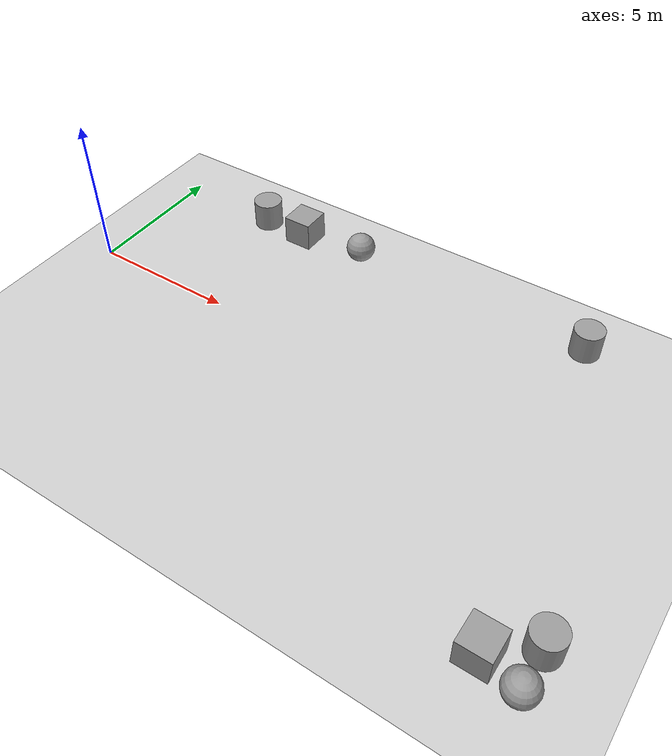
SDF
<sdf version="1.7">
 <world name="default">
  <model name="ground_plane">
   <static>1</static>
   <link name="link">
    <collision name="collision">
     <geometry><plane><normal>0 0 1</normal><size>100 100</size></plane></geometry>
     <surface>
      <contact><collide_bitmask>65535</collide_bitmask></contact>
      <friction><ode><mu>100</mu><mu2>50</mu2></ode></friction>
     </surface>
    </collision>
    <visual name="visual">
     <cast_shadows>0</cast_shadows>
     <geometry><plane><normal>0 0 1</normal><size>100 100</size></plane></geometry>
     <material>
      <script><uri>file://media/materials/scripts/gazebo.material</uri><name>Gazebo/Grey</name></script>
     </material>
    </visual>
   </link>
  </model>
  <model name="unit_cylinder_0">
   <pose>3.66895 4.60628 0.499992 -3e-06 3e-06 0</pose>
   <link name="link">
    <inertial>
     <mass>1</mass>
     <inertia><ixx>0.145833</ixx><ixy>0</ixy><ixz>0</ixz><iyy>0.145833</iyy><iyz>0</iyz><izz>0.125</izz></inertia>
    </inertial>
    <collision name="collision">
     <geometry><cylinder><radius>0.5</radius><length>1</length></cylinder></geometry>
    </collision>
    <visual name="visual">
     <geometry><cylinder><radius>0.5</radius><length>1</length></cylinder></geometry>
     <material>
      <script><name>Gazebo/Grey</name><uri>file://media/materials/scripts/gazebo.material</uri></script>
     </material>
    </visual>
   </link>
  </model>
  <model name="unit_cylinder_1">
   <pose>16.1527 4.63126 0.499998 3e-06 -3e-06 0</pose>
   <link name="link">
    <inertial>
     <mass>1</mass>
     <inertia><ixx>0.145833</ixx><ixy>0</ixy><ixz>0</ixz><iyy>0.145833</iyy><iyz>0</iyz><izz>0.125</izz></inertia>
    </inertial>
    <collision name="collision">
     <geometry><cylinder><radius>0.5</radius><length>1</length></cylinder></geometry>
    </collision>
    <visual name="visual">
     <geometry><cylinder><radius>0.5</radius><length>1</length></cylinder></geometry>
     <material>
      <script><name>Gazebo/Grey</name><uri>file://media/materials/scripts/gazebo.material</uri></script>
     </material>
    </visual>
   </link>
  </model>
  <model name="unit_cylinder_6">
   <pose>19.2741 -5.35637 0.499998 3e-06 4e-06 -0</pose>
   <link name="link">
    <inertial>
     <mass>1</mass>
     <inertia><ixx>0.145833</ixx><ixy>0</ixy><ixz>0</ixz><iyy>0.145833</iyy><iyz>0</iyz><izz>0.125</izz></inertia>
    </inertial>
    <collision name="collision">
     <geometry><cylinder><radius>0.5</radius><length>1</length></cylinder></geometry>
    </collision>
    <visual name="visual">
     <geometry><cylinder><radius>0.5</radius><length>1</length></cylinder></geometry>
     <material>
      <script><name>Gazebo/Grey</name><uri>file://media/materials/scripts/gazebo.material</uri></script>
     </material>
    </visual>
   </link>
  </model>
  <model name="unit_box_0">
   <pose>18.0443 -6.29052 0.499995 -1e-05 -0 -0</pose>
   <link name="link">
    <inertial>
     <mass>1</mass>
     <inertia>
      <ixx>0.166667</ixx>
      <ixy>0</ixy>
      <ixz>0</ixz>
      <iyy>0.166667</iyy>
      <iyz>0</iyz>
      <izz>0.166667</izz>
     </inertia>
    </inertial>
    <collision name="collision"><geometry><box><size>1 1 1</size></box></geometry></collision>
    <visual name="visual">
     <geometry><box><size>1 1 1</size></box></geometry>
     <material>
      <script><name>Gazebo/Grey</name><uri>file://media/materials/scripts/gazebo.material</uri></script>
     </material>
    </visual>
   </link>
  </model>
  <model name="unit_sphere">
   <pose>19.2588 -6.6591 0.5 0 -0 0</pose>
   <link name="link">
    <inertial>
     <mass>1</mass>
     <inertia><ixx>0.1</ixx><ixy>0</ixy><ixz>0</ixz><iyy>0.1</iyy><iyz>0</iyz><izz>0.1</izz></inertia>
    </inertial>
    <collision name="collision"><geometry><sphere><radius>0.5</radius></sphere></geometry></collision>
    <visual name="visual">
     <geometry><sphere><radius>0.5</radius></sphere></geometry>
     <material>
      <script><name>Gazebo/Grey</name><uri>file://media/materials/scripts/gazebo.material</uri></script>
     </material>
    </visual>
   </link>
  </model>
  <model name="unit_box_1">
   <pose>5.3353 4.57536 0.499995 -1e-05 -0 0</pose>
   <link name="link">
    <inertial>
     <mass>1</mass>
     <inertia>
      <ixx>0.166667</ixx>
      <ixy>0</ixy>
      <ixz>0</ixz>
      <iyy>0.166667</iyy>
      <iyz>0</iyz>
      <izz>0.166667</izz>
     </inertia>
    </inertial>
    <collision name="collision"><geometry><box><size>1 1 1</size></box></geometry></collision>
    <visual name="visual">
     <geometry><box><size>1 1 1</size></box></geometry>
     <material>
      <script><name>Gazebo/Grey</name><uri>file://media/materials/scripts/gazebo.material</uri></script>
     </material>
    </visual>
   </link>
  </model>
  <model name="unit_sphere_0">
   <pose>7.66548 4.6914 0.5 0 -0 0</pose>
   <link name="link">
    <inertial>
     <mass>1</mass>
     <inertia><ixx>0.1</ixx><ixy>0</ixy><ixz>0</ixz><iyy>0.1</iyy><iyz>0</iyz><izz>0.1</izz></inertia>
    </inertial>
    <collision name="collision"><geometry><sphere><radius>0.5</radius></sphere></geometry></collision>
    <visual name="visual">
     <geometry><sphere><radius>0.5</radius></sphere></geometry>
     <material>
      <script><name>Gazebo/Grey</name><uri>file://media/materials/scripts/gazebo.material</uri></script>
     </material>
    </visual>
   </link>
  </model>
 </world>
</sdf>
